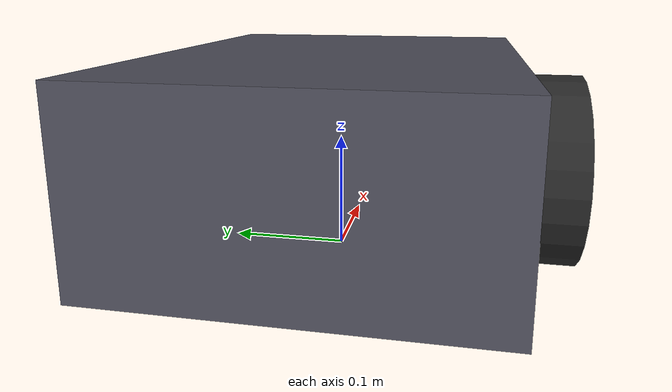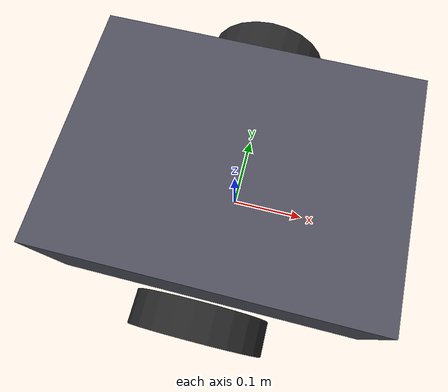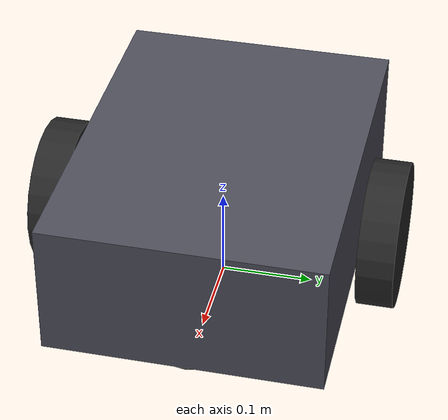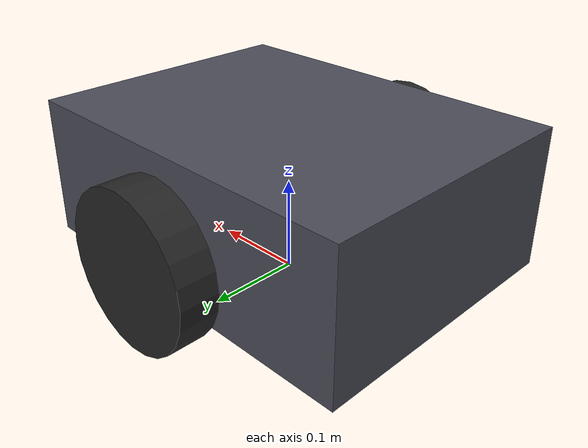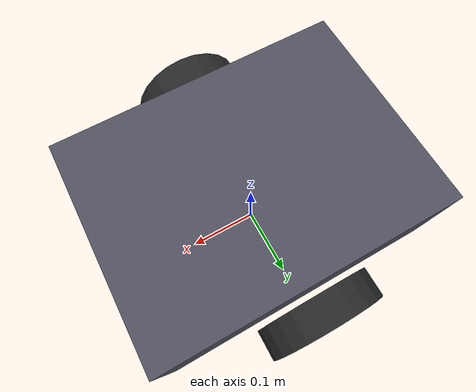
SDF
<?xml version="1.0"?>
<sdf version="1.9">
  <model name="agenticros_amr">

    <!-- ===================== Chassis ===================== -->
    <link name="base_link">
      <pose>0 0 0.10 0 0 0</pose>
      <inertial>
        <mass>5.0</mass>
        <inertia>
          <ixx>0.10</ixx><iyy>0.15</iyy><izz>0.20</izz>
          <ixy>0</ixy><ixz>0</ixz><iyz>0</iyz>
        </inertia>
      </inertial>
      <collision name="chassis_col">
        <geometry><box><size>0.40 0.30 0.15</size></box></geometry>
      </collision>
      <visual name="chassis_vis">
        <geometry><box><size>0.40 0.30 0.15</size></box></geometry>
        <material><ambient>0.2 0.2 0.25 1</ambient><diffuse>0.3 0.3 0.35 1</diffuse></material>
      </visual>

      <!-- ============ RealSense-D435-like depth camera ============ -->
      <sensor name="depth_camera" type="rgbd_camera">
        <pose>0.20 0 0.18 0 0 0</pose>
        <topic>camera</topic>
        <update_rate>30</update_rate>
        <camera>
          <horizontal_fov>1.5184</horizontal_fov>
          <image>
            <width>640</width>
            <height>480</height>
            <format>R8G8B8</format>
          </image>
          <clip>
            <near>0.10</near>
            <far>10.0</far>
          </clip>
          <distortion>
            <k1>0.0</k1><k2>0.0</k2><k3>0.0</k3><p1>0.0</p1><p2>0.0</p2>
          </distortion>
          <optical_frame_id>camera_optical_link</optical_frame_id>
          <depth_camera>
            <output>depths</output>
          </depth_camera>
        </camera>
        <always_on>true</always_on>
        <visualize>false</visualize>
      </sensor>

      <!-- ============ 2D GPU lidar (RPLidar-ish) ============ -->
      <sensor name="gpu_lidar" type="gpu_lidar">
        <pose>0 0 0.20 0 0 0</pose>
        <topic>scan</topic>
        <update_rate>12</update_rate>
        <lidar>
          <scan>
            <horizontal>
              <samples>360</samples>
              <resolution>1</resolution>
              <min_angle>-3.14159</min_angle>
              <max_angle>3.14159</max_angle>
            </horizontal>
          </scan>
          <range>
            <min>0.10</min>
            <max>12.0</max>
            <resolution>0.01</resolution>
          </range>
          <noise>
            <type>gaussian</type><mean>0.0</mean><stddev>0.01</stddev>
          </noise>
          <frame_id>lidar_link</frame_id>
        </lidar>
        <always_on>true</always_on>
        <visualize>false</visualize>
        <gz_frame_id>lidar_link</gz_frame_id>
      </sensor>

      <sensor name="imu_sensor" type="imu">
        <pose>0 0 0 0 0 0</pose>
        <topic>imu</topic>
        <update_rate>100</update_rate>
        <imu>
          <angular_velocity>
            <x><noise type="gaussian"><mean>0.0</mean><stddev>0.0005</stddev></noise></x>
            <y><noise type="gaussian"><mean>0.0</mean><stddev>0.0005</stddev></noise></y>
            <z><noise type="gaussian"><mean>0.0</mean><stddev>0.0005</stddev></noise></z>
          </angular_velocity>
          <linear_acceleration>
            <x><noise type="gaussian"><mean>0.0</mean><stddev>0.005</stddev></noise></x>
            <y><noise type="gaussian"><mean>0.0</mean><stddev>0.005</stddev></noise></y>
            <z><noise type="gaussian"><mean>0.0</mean><stddev>0.005</stddev></noise></z>
          </linear_acceleration>
        </imu>
        <always_on>true</always_on>
      </sensor>
    </link>

    <!-- ===================== Left wheel ===================== -->
    <link name="left_wheel_link">
      <pose>0 0.18 0.08 -1.5707 0 0</pose>
      <inertial>
        <mass>0.5</mass>
        <inertia><ixx>0.0008</ixx><iyy>0.0008</iyy><izz>0.0015</izz><ixy>0</ixy><ixz>0</ixz><iyz>0</iyz></inertia>
      </inertial>
      <collision name="col">
        <geometry><cylinder><radius>0.08</radius><length>0.04</length></cylinder></geometry>
        <surface><friction><ode><mu>1.0</mu><mu2>1.0</mu2></ode></friction></surface>
      </collision>
      <visual name="vis">
        <geometry><cylinder><radius>0.08</radius><length>0.04</length></cylinder></geometry>
        <material><ambient>0.1 0.1 0.1 1</ambient><diffuse>0.15 0.15 0.15 1</diffuse></material>
      </visual>
    </link>

    <!-- ===================== Right wheel ===================== -->
    <link name="right_wheel_link">
      <pose>0 -0.18 0.08 -1.5707 0 0</pose>
      <inertial>
        <mass>0.5</mass>
        <inertia><ixx>0.0008</ixx><iyy>0.0008</iyy><izz>0.0015</izz><ixy>0</ixy><ixz>0</ixz><iyz>0</iyz></inertia>
      </inertial>
      <collision name="col">
        <geometry><cylinder><radius>0.08</radius><length>0.04</length></cylinder></geometry>
        <surface><friction><ode><mu>1.0</mu><mu2>1.0</mu2></ode></friction></surface>
      </collision>
      <visual name="vis">
        <geometry><cylinder><radius>0.08</radius><length>0.04</length></cylinder></geometry>
        <material><ambient>0.1 0.1 0.1 1</ambient><diffuse>0.15 0.15 0.15 1</diffuse></material>
      </visual>
    </link>

    <!-- ===================== Caster (passive front wheel) ===================== -->
    <link name="caster_link">
      <pose>0.16 0 0.04 0 0 0</pose>
      <inertial>
        <mass>0.1</mass>
        <inertia><ixx>0.00004</ixx><iyy>0.00004</iyy><izz>0.00004</izz><ixy>0</ixy><ixz>0</ixz><iyz>0</iyz></inertia>
      </inertial>
      <collision name="col">
        <geometry><sphere><radius>0.04</radius></sphere></geometry>
        <surface><friction><ode><mu>0.05</mu><mu2>0.05</mu2></ode></friction></surface>
      </collision>
      <visual name="vis">
        <geometry><sphere><radius>0.04</radius></sphere></geometry>
        <material><ambient>0.1 0.1 0.1 1</ambient><diffuse>0.15 0.15 0.15 1</diffuse></material>
      </visual>
    </link>

    <!-- ===================== Joints ===================== -->
    <joint name="left_wheel_joint" type="revolute">
      <parent>base_link</parent>
      <child>left_wheel_link</child>
      <axis>
        <xyz>0 0 1</xyz>
        <limit><lower>-1e16</lower><upper>1e16</upper></limit>
      </axis>
    </joint>

    <joint name="right_wheel_joint" type="revolute">
      <parent>base_link</parent>
      <child>right_wheel_link</child>
      <axis>
        <xyz>0 0 1</xyz>
        <limit><lower>-1e16</lower><upper>1e16</upper></limit>
      </axis>
    </joint>

    <joint name="caster_joint" type="ball">
      <parent>base_link</parent>
      <child>caster_link</child>
    </joint>

    <!-- ===================== Plugins ===================== -->
    <plugin filename="gz-sim-diff-drive-system" name="gz::sim::systems::DiffDrive">
      <left_joint>left_wheel_joint</left_joint>
      <right_joint>right_wheel_joint</right_joint>
      <wheel_separation>0.36</wheel_separation>
      <wheel_radius>0.08</wheel_radius>
      <odom_publish_frequency>50</odom_publish_frequency>
      <odom_topic>odometry</odom_topic>
      <tf_topic>tf</tf_topic>
      <frame_id>odom</frame_id>
      <child_frame_id>base_footprint</child_frame_id>
      <max_linear_acceleration>1.0</max_linear_acceleration>
      <max_angular_acceleration>2.0</max_angular_acceleration>
    </plugin>

    <plugin
      filename="gz-sim-odometry-publisher-system"
      name="gz::sim::systems::OdometryPublisher">
      <odom_frame>odom</odom_frame>
      <robot_base_frame>base_footprint</robot_base_frame>
      <odom_topic>odometry</odom_topic>
      <odom_covariance_topic>odometry_with_covariance</odom_covariance_topic>
      <tf_topic>odometry_publisher_tf_unused</tf_topic>
      <dimensions>2</dimensions>
    </plugin>

    <plugin filename="gz-sim-joint-state-publisher-system" name="gz::sim::systems::JointStatePublisher">
      <topic>joint_states</topic>
    </plugin>

    <plugin filename="gz-sim-pose-publisher-system" name="gz::sim::systems::PosePublisher">
      <publish_link_pose>true</publish_link_pose>
      <publish_sensor_pose>true</publish_sensor_pose>
      <publish_collision_pose>false</publish_collision_pose>
      <publish_visual_pose>false</publish_visual_pose>
      <publish_nested_model_pose>false</publish_nested_model_pose>
      <use_pose_vector_msg>true</use_pose_vector_msg>
      <static_publisher>true</static_publisher>
      <static_update_frequency>1</static_update_frequency>
    </plugin>

  </model>
</sdf>
